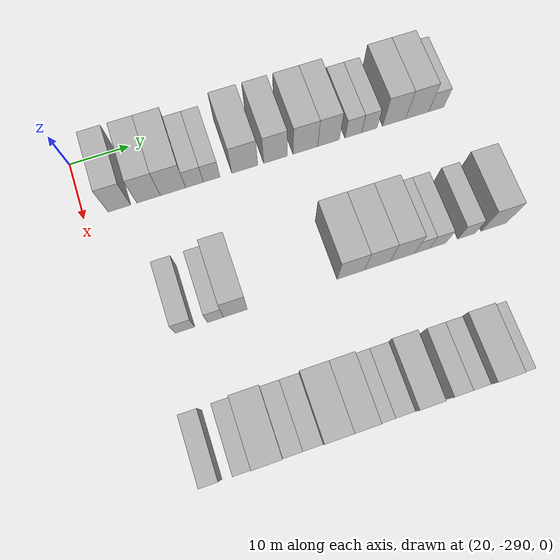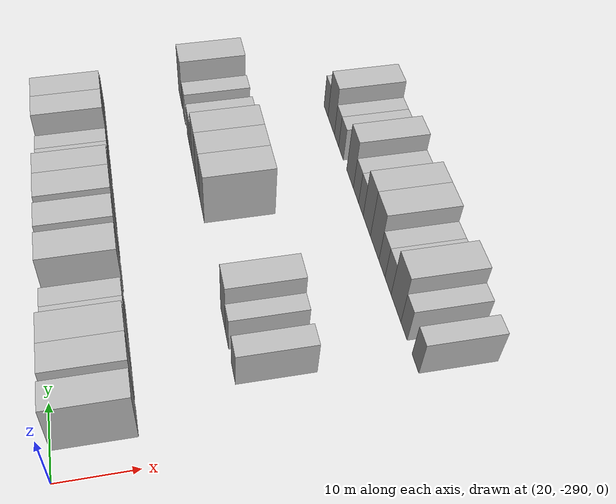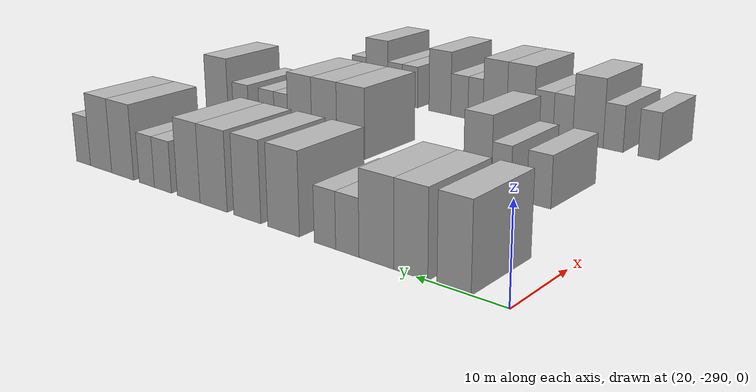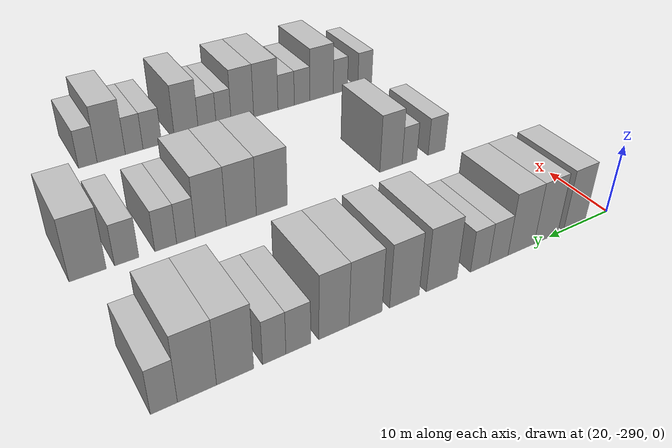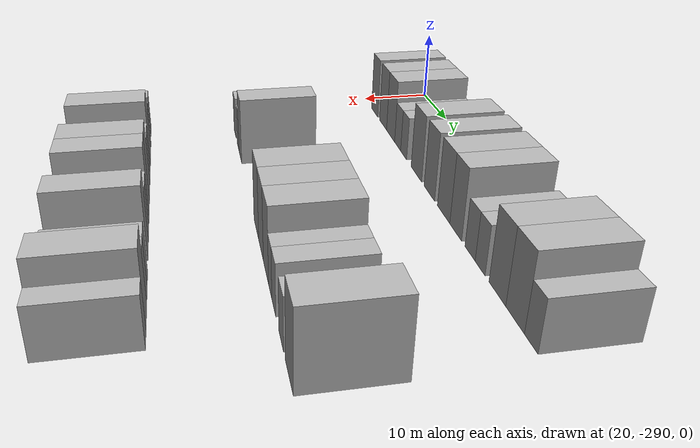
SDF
<sdf version="1.6">
 <world name="default">
  <model name="building_29">
   <static>1</static>
   <pose>25.0000 -284.2097 0 0.000000 0.000000 0.000000</pose>
   <link name="link">
    <pose>0 0 4.50 0 0 0</pose>
    <collision name="collision"><geometry><box><size>10.0000 3.6951 9.0000</size></box></geometry></collision>
    <visual name="visual">
     <cast_shadows>0</cast_shadows>
     <geometry><box><size>10.0000 3.6951 9.0000</size></box></geometry>
     <material>
      <script>
       <uri>model://HANNAS_wall/materials/scripts</uri>
       <uri>model://HANNAS_wall/materials/textures</uri>
       <name>vrc/HANNAS_wall</name>
      </script>
     </material>
    </visual>
   </link>
  </model>
  <model name="building_30">
   <static>1</static>
   <pose>25.0000 -279.4100 0 0.000000 0.000000 0.000000</pose>
   <link name="link">
    <pose>0 0 4.50 0 0 0</pose>
    <collision name="collision"><geometry><box><size>10.0000 3.9044 9.0000</size></box></geometry></collision>
    <visual name="visual">
     <cast_shadows>0</cast_shadows>
     <geometry><box><size>10.0000 3.9044 9.0000</size></box></geometry>
     <material>
      <script>
       <uri>model://HANNAS_wall/materials/scripts</uri>
       <uri>model://HANNAS_wall/materials/textures</uri>
       <name>vrc/HANNAS_wall</name>
      </script>
     </material>
    </visual>
   </link>
  </model>
  <model name="building_31">
   <static>1</static>
   <pose>25.0000 -275.3593 0 0.000000 0.000000 0.000000</pose>
   <link name="link">
    <pose>0 0 4.50 0 0 0</pose>
    <collision name="collision"><geometry><box><size>10.0000 4.1969 9.0000</size></box></geometry></collision>
    <visual name="visual">
     <cast_shadows>0</cast_shadows>
     <geometry><box><size>10.0000 4.1969 9.0000</size></box></geometry>
     <material>
      <script>
       <uri>model://HANNAS_wall/materials/scripts</uri>
       <uri>model://HANNAS_wall/materials/textures</uri>
       <name>vrc/HANNAS_wall</name>
      </script>
     </material>
    </visual>
   </link>
  </model>
  <model name="building_32">
   <static>1</static>
   <pose>25.0000 -271.7904 0 0.000000 0.000000 0.000000</pose>
   <link name="link">
    <pose>0 0 3.00 0 0 0</pose>
    <collision name="collision"><geometry><box><size>10.0000 2.9410 6.0000</size></box></geometry></collision>
    <visual name="visual">
     <cast_shadows>0</cast_shadows>
     <geometry><box><size>10.0000 2.9410 6.0000</size></box></geometry>
     <material>
      <script>
       <uri>model://HANNAS_wall/materials/scripts</uri>
       <uri>model://HANNAS_wall/materials/textures</uri>
       <name>vrc/HANNAS_wall</name>
      </script>
     </material>
    </visual>
   </link>
  </model>
  <model name="building_33">
   <static>1</static>
   <pose>25.0000 -268.9199 0 0.000000 0.000000 0.000000</pose>
   <link name="link">
    <pose>0 0 3.00 0 0 0</pose>
    <collision name="collision"><geometry><box><size>10.0000 2.8000 6.0000</size></box></geometry></collision>
    <visual name="visual">
     <cast_shadows>0</cast_shadows>
     <geometry><box><size>10.0000 2.8000 6.0000</size></box></geometry>
     <material>
      <script>
       <uri>model://HANNAS_wall/materials/scripts</uri>
       <uri>model://HANNAS_wall/materials/textures</uri>
       <name>vrc/HANNAS_wall</name>
      </script>
     </material>
    </visual>
   </link>
  </model>
  <model name="building_34">
   <static>1</static>
   <pose>25.0000 -263.3124 0 0.000000 0.000000 0.000000</pose>
   <link name="link">
    <pose>0 0 4.50 0 0 0</pose>
    <collision name="collision"><geometry><box><size>10.0000 4.4150 9.0000</size></box></geometry></collision>
    <visual name="visual">
     <cast_shadows>0</cast_shadows>
     <geometry><box><size>10.0000 4.4150 9.0000</size></box></geometry>
     <material>
      <script>
       <uri>model://HANNAS_wall/materials/scripts</uri>
       <uri>model://HANNAS_wall/materials/textures</uri>
       <name>vrc/HANNAS_wall</name>
      </script>
     </material>
    </visual>
   </link>
  </model>
  <model name="building_35">
   <static>1</static>
   <pose>25.0000 -258.0931 0 0.000000 0.000000 0.000000</pose>
   <link name="link">
    <pose>0 0 4.50 0 0 0</pose>
    <collision name="collision"><geometry><box><size>10.0000 4.0236 9.0000</size></box></geometry></collision>
    <visual name="visual">
     <cast_shadows>0</cast_shadows>
     <geometry><box><size>10.0000 4.0236 9.0000</size></box></geometry>
     <material>
      <script>
       <uri>model://HANNAS_wall/materials/scripts</uri>
       <uri>model://HANNAS_wall/materials/textures</uri>
       <name>vrc/HANNAS_wall</name>
      </script>
     </material>
    </visual>
   </link>
  </model>
  <model name="building_36">
   <static>1</static>
   <pose>25.0000 -252.9448 0 0.000000 0.000000 0.000000</pose>
   <link name="link">
    <pose>0 0 4.50 0 0 0</pose>
    <collision name="collision"><geometry><box><size>10.0000 4.2731 9.0000</size></box></geometry></collision>
    <visual name="visual">
     <cast_shadows>0</cast_shadows>
     <geometry><box><size>10.0000 4.2731 9.0000</size></box></geometry>
     <material>
      <script>
       <uri>model://HANNAS_wall/materials/scripts</uri>
       <uri>model://HANNAS_wall/materials/textures</uri>
       <name>vrc/HANNAS_wall</name>
      </script>
     </material>
    </visual>
   </link>
  </model>
  <model name="building_37">
   <static>1</static>
   <pose>25.0000 -248.9344 0 0.000000 0.000000 0.000000</pose>
   <link name="link">
    <pose>0 0 4.50 0 0 0</pose>
    <collision name="collision"><geometry><box><size>10.0000 3.7476 9.0000</size></box></geometry></collision>
    <visual name="visual">
     <cast_shadows>0</cast_shadows>
     <geometry><box><size>10.0000 3.7476 9.0000</size></box></geometry>
     <material>
      <script>
       <uri>model://HANNAS_wall/materials/scripts</uri>
       <uri>model://HANNAS_wall/materials/textures</uri>
       <name>vrc/HANNAS_wall</name>
      </script>
     </material>
    </visual>
   </link>
  </model>
  <model name="building_38">
   <static>1</static>
   <pose>25.0000 -244.5937 0 0.000000 0.000000 0.000000</pose>
   <link name="link">
    <pose>0 0 3.00 0 0 0</pose>
    <collision name="collision"><geometry><box><size>10.0000 2.9339 6.0000</size></box></geometry></collision>
    <visual name="visual">
     <cast_shadows>0</cast_shadows>
     <geometry><box><size>10.0000 2.9339 6.0000</size></box></geometry>
     <material>
      <script>
       <uri>model://HANNAS_wall/materials/scripts</uri>
       <uri>model://HANNAS_wall/materials/textures</uri>
       <name>vrc/HANNAS_wall</name>
      </script>
     </material>
    </visual>
   </link>
  </model>
  <model name="building_39">
   <static>1</static>
   <pose>25.0000 -241.7820 0 0.000000 0.000000 0.000000</pose>
   <link name="link">
    <pose>0 0 3.00 0 0 0</pose>
    <collision name="collision"><geometry><box><size>10.0000 2.6894 6.0000</size></box></geometry></collision>
    <visual name="visual">
     <cast_shadows>0</cast_shadows>
     <geometry><box><size>10.0000 2.6894 6.0000</size></box></geometry>
     <material>
      <script>
       <uri>model://HANNAS_wall/materials/scripts</uri>
       <uri>model://HANNAS_wall/materials/textures</uri>
       <name>vrc/HANNAS_wall</name>
      </script>
     </material>
    </visual>
   </link>
  </model>
  <model name="building_40">
   <static>1</static>
   <pose>25.0000 -237.3961 0 0.000000 0.000000 0.000000</pose>
   <link name="link">
    <pose>0 0 4.50 0 0 0</pose>
    <collision name="collision"><geometry><box><size>10.0000 4.0824 9.0000</size></box></geometry></collision>
    <visual name="visual">
     <cast_shadows>0</cast_shadows>
     <geometry><box><size>10.0000 4.0824 9.0000</size></box></geometry>
     <material>
      <script>
       <uri>model://HANNAS_wall/materials/scripts</uri>
       <uri>model://HANNAS_wall/materials/textures</uri>
       <name>vrc/HANNAS_wall</name>
      </script>
     </material>
    </visual>
   </link>
  </model>
  <model name="building_41">
   <static>1</static>
   <pose>25.0000 -233.3007 0 0.000000 0.000000 0.000000</pose>
   <link name="link">
    <pose>0 0 4.50 0 0 0</pose>
    <collision name="collision"><geometry><box><size>10.0000 4.1085 9.0000</size></box></geometry></collision>
    <visual name="visual">
     <cast_shadows>0</cast_shadows>
     <geometry><box><size>10.0000 4.1085 9.0000</size></box></geometry>
     <material>
      <script>
       <uri>model://HANNAS_wall/materials/scripts</uri>
       <uri>model://HANNAS_wall/materials/textures</uri>
       <name>vrc/HANNAS_wall</name>
      </script>
     </material>
    </visual>
   </link>
  </model>
  <model name="building_42">
   <static>1</static>
   <pose>25.0000 -229.8728 0 0.000000 0.000000 0.000000</pose>
   <link name="link">
    <pose>0 0 3.00 0 0 0</pose>
    <collision name="collision"><geometry><box><size>10.0000 2.7473 6.0000</size></box></geometry></collision>
    <visual name="visual">
     <cast_shadows>0</cast_shadows>
     <geometry><box><size>10.0000 2.7473 6.0000</size></box></geometry>
     <material>
      <script>
       <uri>model://HANNAS_wall/materials/scripts</uri>
       <uri>model://HANNAS_wall/materials/textures</uri>
       <name>vrc/HANNAS_wall</name>
      </script>
     </material>
    </visual>
   </link>
  </model>
  <model name="building_220">
   <static>1</static>
   <pose>47.0000 -279.7737 0 0.000000 0.000000 0.000000</pose>
   <link name="link">
    <pose>0 0 3.00 0 0 0</pose>
    <collision name="collision"><geometry><box><size>10.0000 2.9966 6.0000</size></box></geometry></collision>
    <visual name="visual">
     <cast_shadows>0</cast_shadows>
     <geometry><box><size>10.0000 2.9966 6.0000</size></box></geometry>
     <material>
      <script>
       <uri>model://HANNAS_wall/materials/scripts</uri>
       <uri>model://HANNAS_wall/materials/textures</uri>
       <name>vrc/HANNAS_wall</name>
      </script>
     </material>
    </visual>
   </link>
  </model>
  <model name="building_221">
   <static>1</static>
   <pose>47.0000 -275.0089 0 0.000000 0.000000 0.000000</pose>
   <link name="link">
    <pose>0 0 3.00 0 0 0</pose>
    <collision name="collision"><geometry><box><size>10.0000 2.5331 6.0000</size></box></geometry></collision>
    <visual name="visual">
     <cast_shadows>0</cast_shadows>
     <geometry><box><size>10.0000 2.5331 6.0000</size></box></geometry>
     <material>
      <script>
       <uri>model://HANNAS_wall/materials/scripts</uri>
       <uri>model://HANNAS_wall/materials/textures</uri>
       <name>vrc/HANNAS_wall</name>
      </script>
     </material>
    </visual>
   </link>
  </model>
  <model name="building_222">
   <static>1</static>
   <pose>47.0000 -271.8632 0 0.000000 0.000000 0.000000</pose>
   <link name="link">
    <pose>0 0 4.50 0 0 0</pose>
    <collision name="collision"><geometry><box><size>10.0000 3.7582 9.0000</size></box></geometry></collision>
    <visual name="visual">
     <cast_shadows>0</cast_shadows>
     <geometry><box><size>10.0000 3.7582 9.0000</size></box></geometry>
     <material>
      <script>
       <uri>model://HANNAS_wall/materials/scripts</uri>
       <uri>model://HANNAS_wall/materials/textures</uri>
       <name>vrc/HANNAS_wall</name>
      </script>
     </material>
    </visual>
   </link>
  </model>
  <model name="building_223">
   <static>1</static>
   <pose>47.0000 -253.2428 0 0.000000 0.000000 0.000000</pose>
   <link name="link">
    <pose>0 0 4.50 0 0 0</pose>
    <collision name="collision"><geometry><box><size>10.0000 4.4942 9.0000</size></box></geometry></collision>
    <visual name="visual">
     <cast_shadows>0</cast_shadows>
     <geometry><box><size>10.0000 4.4942 9.0000</size></box></geometry>
     <material>
      <script>
       <uri>model://HANNAS_wall/materials/scripts</uri>
       <uri>model://HANNAS_wall/materials/textures</uri>
       <name>vrc/HANNAS_wall</name>
      </script>
     </material>
    </visual>
   </link>
  </model>
  <model name="building_224">
   <static>1</static>
   <pose>47.0000 -248.8892 0 0.000000 0.000000 0.000000</pose>
   <link name="link">
    <pose>0 0 4.50 0 0 0</pose>
    <collision name="collision"><geometry><box><size>10.0000 4.2130 9.0000</size></box></geometry></collision>
    <visual name="visual">
     <cast_shadows>0</cast_shadows>
     <geometry><box><size>10.0000 4.2130 9.0000</size></box></geometry>
     <material>
      <script>
       <uri>model://HANNAS_wall/materials/scripts</uri>
       <uri>model://HANNAS_wall/materials/textures</uri>
       <name>vrc/HANNAS_wall</name>
      </script>
     </material>
    </visual>
   </link>
  </model>
  <model name="building_225">
   <static>1</static>
   <pose>47.0000 -244.7073 0 0.000000 0.000000 0.000000</pose>
   <link name="link">
    <pose>0 0 4.50 0 0 0</pose>
    <collision name="collision"><geometry><box><size>10.0000 4.1508 9.0000</size></box></geometry></collision>
    <visual name="visual">
     <cast_shadows>0</cast_shadows>
     <geometry><box><size>10.0000 4.1508 9.0000</size></box></geometry>
     <material>
      <script>
       <uri>model://HANNAS_wall/materials/scripts</uri>
       <uri>model://HANNAS_wall/materials/textures</uri>
       <name>vrc/HANNAS_wall</name>
      </script>
     </material>
    </visual>
   </link>
  </model>
  <model name="building_226">
   <static>1</static>
   <pose>47.0000 -241.4015 0 0.000000 0.000000 0.000000</pose>
   <link name="link">
    <pose>0 0 3.00 0 0 0</pose>
    <collision name="collision"><geometry><box><size>10.0000 2.4606 6.0000</size></box></geometry></collision>
    <visual name="visual">
     <cast_shadows>0</cast_shadows>
     <geometry><box><size>10.0000 2.4606 6.0000</size></box></geometry>
     <material>
      <script>
       <uri>model://HANNAS_wall/materials/scripts</uri>
       <uri>model://HANNAS_wall/materials/textures</uri>
       <name>vrc/HANNAS_wall</name>
      </script>
     </material>
    </visual>
   </link>
  </model>
  <model name="building_227">
   <static>1</static>
   <pose>47.0000 -238.7744 0 0.000000 0.000000 0.000000</pose>
   <link name="link">
    <pose>0 0 3.00 0 0 0</pose>
    <collision name="collision"><geometry><box><size>10.0000 2.7937 6.0000</size></box></geometry></collision>
    <visual name="visual">
     <cast_shadows>0</cast_shadows>
     <geometry><box><size>10.0000 2.7937 6.0000</size></box></geometry>
     <material>
      <script>
       <uri>model://HANNAS_wall/materials/scripts</uri>
       <uri>model://HANNAS_wall/materials/textures</uri>
       <name>vrc/HANNAS_wall</name>
      </script>
     </material>
    </visual>
   </link>
  </model>
  <model name="building_228">
   <static>1</static>
   <pose>47.0000 -233.8921 0 0.000000 0.000000 0.000000</pose>
   <link name="link">
    <pose>0 0 3.00 0 0 0</pose>
    <collision name="collision"><geometry><box><size>10.0000 2.9710 6.0000</size></box></geometry></collision>
    <visual name="visual">
     <cast_shadows>0</cast_shadows>
     <geometry><box><size>10.0000 2.9710 6.0000</size></box></geometry>
     <material>
      <script>
       <uri>model://HANNAS_wall/materials/scripts</uri>
       <uri>model://HANNAS_wall/materials/textures</uri>
       <name>vrc/HANNAS_wall</name>
      </script>
     </material>
    </visual>
   </link>
  </model>
  <model name="building_229">
   <static>1</static>
   <pose>47.0000 -229.2226 0 0.000000 0.000000 0.000000</pose>
   <link name="link">
    <pose>0 0 4.50 0 0 0</pose>
    <collision name="collision"><geometry><box><size>10.0000 4.3680 9.0000</size></box></geometry></collision>
    <visual name="visual">
     <cast_shadows>0</cast_shadows>
     <geometry><box><size>10.0000 4.3680 9.0000</size></box></geometry>
     <material>
      <script>
       <uri>model://HANNAS_wall/materials/scripts</uri>
       <uri>model://HANNAS_wall/materials/textures</uri>
       <name>vrc/HANNAS_wall</name>
      </script>
     </material>
    </visual>
   </link>
  </model>
  <model name="building_405">
   <static>1</static>
   <pose>69.0000 -282.1656 0 0.000000 0.000000 0.000000</pose>
   <link name="link">
    <pose>0 0 3.00 0 0 0</pose>
    <collision name="collision"><geometry><box><size>10.0000 2.7463 6.0000</size></box></geometry></collision>
    <visual name="visual">
     <cast_shadows>0</cast_shadows>
     <geometry><box><size>10.0000 2.7463 6.0000</size></box></geometry>
     <material>
      <script>
       <uri>model://HANNAS_wall/materials/scripts</uri>
       <uri>model://HANNAS_wall/materials/textures</uri>
       <name>vrc/HANNAS_wall</name>
      </script>
     </material>
    </visual>
   </link>
  </model>
  <model name="building_406">
   <static>1</static>
   <pose>69.0000 -277.4282 0 0.000000 0.000000 0.000000</pose>
   <link name="link">
    <pose>0 0 3.00 0 0 0</pose>
    <collision name="collision"><geometry><box><size>10.0000 2.7286 6.0000</size></box></geometry></collision>
    <visual name="visual">
     <cast_shadows>0</cast_shadows>
     <geometry><box><size>10.0000 2.7286 6.0000</size></box></geometry>
     <material>
      <script>
       <uri>model://HANNAS_wall/materials/scripts</uri>
       <uri>model://HANNAS_wall/materials/textures</uri>
       <name>vrc/HANNAS_wall</name>
      </script>
     </material>
    </visual>
   </link>
  </model>
  <model name="building_407">
   <static>1</static>
   <pose>69.0000 -273.9022 0 0.000000 0.000000 0.000000</pose>
   <link name="link">
    <pose>0 0 4.50 0 0 0</pose>
    <collision name="collision"><geometry><box><size>10.0000 4.3232 9.0000</size></box></geometry></collision>
    <visual name="visual">
     <cast_shadows>0</cast_shadows>
     <geometry><box><size>10.0000 4.3232 9.0000</size></box></geometry>
     <material>
      <script>
       <uri>model://HANNAS_wall/materials/scripts</uri>
       <uri>model://HANNAS_wall/materials/textures</uri>
       <name>vrc/HANNAS_wall</name>
      </script>
     </material>
    </visual>
   </link>
  </model>
  <model name="building_408">
   <static>1</static>
   <pose>69.0000 -270.3213 0 0.000000 0.000000 0.000000</pose>
   <link name="link">
    <pose>0 0 3.00 0 0 0</pose>
    <collision name="collision"><geometry><box><size>10.0000 2.8386 6.0000</size></box></geometry></collision>
    <visual name="visual">
     <cast_shadows>0</cast_shadows>
     <geometry><box><size>10.0000 2.8386 6.0000</size></box></geometry>
     <material>
      <script>
       <uri>model://HANNAS_wall/materials/scripts</uri>
       <uri>model://HANNAS_wall/materials/textures</uri>
       <name>vrc/HANNAS_wall</name>
      </script>
     </material>
    </visual>
   </link>
  </model>
  <model name="building_409">
   <static>1</static>
   <pose>69.0000 -267.4506 0 0.000000 0.000000 0.000000</pose>
   <link name="link">
    <pose>0 0 3.00 0 0 0</pose>
    <collision name="collision"><geometry><box><size>10.0000 2.9029 6.0000</size></box></geometry></collision>
    <visual name="visual">
     <cast_shadows>0</cast_shadows>
     <geometry><box><size>10.0000 2.9029 6.0000</size></box></geometry>
     <material>
      <script>
       <uri>model://HANNAS_wall/materials/scripts</uri>
       <uri>model://HANNAS_wall/materials/textures</uri>
       <name>vrc/HANNAS_wall</name>
      </script>
     </material>
    </visual>
   </link>
  </model>
  <model name="building_410">
   <static>1</static>
   <pose>69.0000 -263.8898 0 0.000000 0.000000 0.000000</pose>
   <link name="link">
    <pose>0 0 4.50 0 0 0</pose>
    <collision name="collision"><geometry><box><size>10.0000 4.2186 9.0000</size></box></geometry></collision>
    <visual name="visual">
     <cast_shadows>0</cast_shadows>
     <geometry><box><size>10.0000 4.2186 9.0000</size></box></geometry>
     <material>
      <script>
       <uri>model://HANNAS_wall/materials/scripts</uri>
       <uri>model://HANNAS_wall/materials/textures</uri>
       <name>vrc/HANNAS_wall</name>
      </script>
     </material>
    </visual>
   </link>
  </model>
  <model name="building_411">
   <static>1</static>
   <pose>69.0000 -259.8878 0 0.000000 0.000000 0.000000</pose>
   <link name="link">
    <pose>0 0 4.50 0 0 0</pose>
    <collision name="collision"><geometry><box><size>10.0000 3.7854 9.0000</size></box></geometry></collision>
    <visual name="visual">
     <cast_shadows>0</cast_shadows>
     <geometry><box><size>10.0000 3.7854 9.0000</size></box></geometry>
     <material>
      <script>
       <uri>model://HANNAS_wall/materials/scripts</uri>
       <uri>model://HANNAS_wall/materials/textures</uri>
       <name>vrc/HANNAS_wall</name>
      </script>
     </material>
    </visual>
   </link>
  </model>
  <model name="building_412">
   <static>1</static>
   <pose>69.0000 -256.7623 0 0.000000 0.000000 0.000000</pose>
   <link name="link">
    <pose>0 0 3.00 0 0 0</pose>
    <collision name="collision"><geometry><box><size>10.0000 2.4658 6.0000</size></box></geometry></collision>
    <visual name="visual">
     <cast_shadows>0</cast_shadows>
     <geometry><box><size>10.0000 2.4658 6.0000</size></box></geometry>
     <material>
      <script>
       <uri>model://HANNAS_wall/materials/scripts</uri>
       <uri>model://HANNAS_wall/materials/textures</uri>
       <name>vrc/HANNAS_wall</name>
      </script>
     </material>
    </visual>
   </link>
  </model>
  <model name="building_413">
   <static>1</static>
   <pose>69.0000 -254.0870 0 0.000000 0.000000 0.000000</pose>
   <link name="link">
    <pose>0 0 3.00 0 0 0</pose>
    <collision name="collision"><geometry><box><size>10.0000 2.8847 6.0000</size></box></geometry></collision>
    <visual name="visual">
     <cast_shadows>0</cast_shadows>
     <geometry><box><size>10.0000 2.8847 6.0000</size></box></geometry>
     <material>
      <script>
       <uri>model://HANNAS_wall/materials/scripts</uri>
       <uri>model://HANNAS_wall/materials/textures</uri>
       <name>vrc/HANNAS_wall</name>
      </script>
     </material>
    </visual>
   </link>
  </model>
  <model name="building_414">
   <static>1</static>
   <pose>69.0000 -250.7505 0 0.000000 0.000000 0.000000</pose>
   <link name="link">
    <pose>0 0 4.50 0 0 0</pose>
    <collision name="collision"><geometry><box><size>10.0000 3.7883 9.0000</size></box></geometry></collision>
    <visual name="visual">
     <cast_shadows>0</cast_shadows>
     <geometry><box><size>10.0000 3.7883 9.0000</size></box></geometry>
     <material>
      <script>
       <uri>model://HANNAS_wall/materials/scripts</uri>
       <uri>model://HANNAS_wall/materials/textures</uri>
       <name>vrc/HANNAS_wall</name>
      </script>
     </material>
    </visual>
   </link>
  </model>
  <model name="building_415">
   <static>1</static>
   <pose>69.0000 -245.4355 0 0.000000 0.000000 0.000000</pose>
   <link name="link">
    <pose>0 0 3.00 0 0 0</pose>
    <collision name="collision"><geometry><box><size>10.0000 2.8417 6.0000</size></box></geometry></collision>
    <visual name="visual">
     <cast_shadows>0</cast_shadows>
     <geometry><box><size>10.0000 2.8417 6.0000</size></box></geometry>
     <material>
      <script>
       <uri>model://HANNAS_wall/materials/scripts</uri>
       <uri>model://HANNAS_wall/materials/textures</uri>
       <name>vrc/HANNAS_wall</name>
      </script>
     </material>
    </visual>
   </link>
  </model>
  <model name="building_416">
   <static>1</static>
   <pose>69.0000 -242.7010 0 0.000000 0.000000 0.000000</pose>
   <link name="link">
    <pose>0 0 3.00 0 0 0</pose>
    <collision name="collision"><geometry><box><size>10.0000 2.6273 6.0000</size></box></geometry></collision>
    <visual name="visual">
     <cast_shadows>0</cast_shadows>
     <geometry><box><size>10.0000 2.6273 6.0000</size></box></geometry>
     <material>
      <script>
       <uri>model://HANNAS_wall/materials/scripts</uri>
       <uri>model://HANNAS_wall/materials/textures</uri>
       <name>vrc/HANNAS_wall</name>
      </script>
     </material>
    </visual>
   </link>
  </model>
  <model name="building_417">
   <static>1</static>
   <pose>69.0000 -239.3438 0 0.000000 0.000000 0.000000</pose>
   <link name="link">
    <pose>0 0 4.50 0 0 0</pose>
    <collision name="collision"><geometry><box><size>10.0000 4.0872 9.0000</size></box></geometry></collision>
    <visual name="visual">
     <cast_shadows>0</cast_shadows>
     <geometry><box><size>10.0000 4.0872 9.0000</size></box></geometry>
     <material>
      <script>
       <uri>model://HANNAS_wall/materials/scripts</uri>
       <uri>model://HANNAS_wall/materials/textures</uri>
       <name>vrc/HANNAS_wall</name>
      </script>
     </material>
    </visual>
   </link>
  </model>
  <model name="building_418">
   <static>1</static>
   <pose>69.0000 -235.9718 0 0.000000 0.000000 0.000000</pose>
   <link name="link">
    <pose>0 0 3.00 0 0 0</pose>
    <collision name="collision"><geometry><box><size>10.0000 2.6567 6.0000</size></box></geometry></collision>
    <visual name="visual">
     <cast_shadows>0</cast_shadows>
     <geometry><box><size>10.0000 2.6567 6.0000</size></box></geometry>
     <material>
      <script>
       <uri>model://HANNAS_wall/materials/scripts</uri>
       <uri>model://HANNAS_wall/materials/textures</uri>
       <name>vrc/HANNAS_wall</name>
      </script>
     </material>
    </visual>
   </link>
  </model>
 </world>
</sdf>
